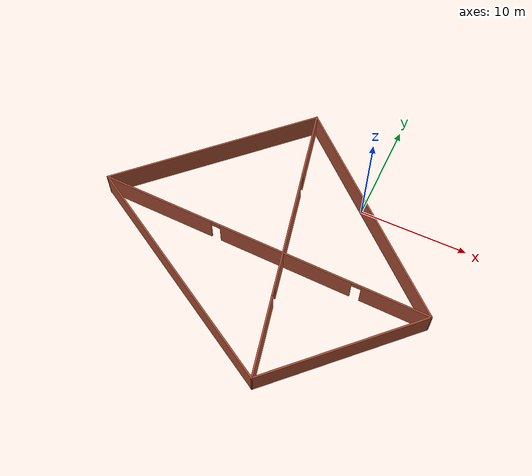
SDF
<?xml version='1.0'?>
<sdf version='1.6'>
  <model name='building'>
    <pose frame=''>-6.24613 -6.51715 0 0 -0 0</pose>
    <link name='Wall_1'>
      <collision name='Wall_1_Collision'>
        <geometry>
          <box>
            <size>20.5 0.15 2.5</size>
          </box>
        </geometry>
        <pose frame=''>0 0 1.25 0 -0 0</pose>
      </collision>
      <visual name='Wall_1_Visual'>
        <pose frame=''>0 0 1.25 0 -0 0</pose>
        <geometry>
          <box>
            <size>20.5 0.15 2.5</size>
          </box>
        </geometry>
        <material>
          <script>
            <uri>file://media/materials/scripts/gazebo.material</uri>
            <name>Gazebo/Bricks</name>
          </script>
          <ambient>1 1 1 1</ambient>
        </material>
        <meta>
          <layer>0</layer>
        </meta>
      </visual>
      <pose frame=''>-8.43147 5.8375 0 0 0 -2.35619</pose>
    </link>
    <link name='Wall_2'>
      <collision name='Wall_2_Collision'>
        <geometry>
          <box>
            <size>23.5 0.15 2.5</size>
          </box>
        </geometry>
        <pose frame=''>0 0 1.25 0 -0 0</pose>
      </collision>
      <visual name='Wall_2_Visual'>
        <pose frame=''>0 0 1.25 0 -0 0</pose>
        <geometry>
          <box>
            <size>23.5 0.15 2.5</size>
          </box>
        </geometry>
        <material>
          <script>
            <uri>file://media/materials/scripts/gazebo.material</uri>
            <name>Gazebo/Bricks</name>
          </script>
          <ambient>1 1 1 1</ambient>
        </material>
        <meta>
          <layer>0</layer>
        </meta>
      </visual>
      <pose frame=''>-5.51543 -7.19481 0 0 0 -0.523599</pose>
    </link>
    <link name='Wall_3'>
      <collision name='Wall_3_Collision'>
        <geometry>
          <box>
            <size>15.75 0.15 2.5</size>
          </box>
        </geometry>
        <pose frame=''>0 0 1.25 0 -0 0</pose>
      </collision>
      <visual name='Wall_3_Visual'>
        <pose frame=''>0 0 1.25 0 -0 0</pose>
        <geometry>
          <box>
            <size>15.75 0.15 2.5</size>
          </box>
        </geometry>
        <material>
          <script>
            <uri>file://media/materials/scripts/gazebo.material</uri>
            <name>Gazebo/Bricks</name>
          </script>
          <ambient>1 1 1 1</ambient>
        </material>
        <meta>
          <layer>0</layer>
        </meta>
      </visual>
      <pose frame=''>10.1108 -7.51688 0 0 -0 0.785398</pose>
    </link>
    <link name='Wall_4'>
      <collision name='Wall_4_Collision'>
        <geometry>
          <box>
            <size>22.7414 0.15 2.5</size>
          </box>
        </geometry>
        <pose frame=''>0 0 1.25 0 -0 0</pose>
      </collision>
      <visual name='Wall_4_Visual'>
        <pose frame=''>0 0 1.25 0 -0 0</pose>
        <geometry>
          <box>
            <size>22.7414 0.15 2.5</size>
          </box>
        </geometry>
        <material>
          <script>
            <uri>file://media/materials/scripts/gazebo.material</uri>
            <name>Gazebo/Bricks</name>
          </script>
          <ambient>1 1 1 1</ambient>
        </material>
        <meta>
          <layer>0</layer>
        </meta>
      </visual>
      <pose frame=''>7.19481 5.51543 0 0 -0 2.41348</pose>
    </link>
    <link name='Wall_5'>
      <pose frame=''>1.67938 0 0 0 0 -1.35067</pose>
      <visual name='Wall_5_Visual_0'>
        <pose frame=''>-10.0114 0 1.25 0 -0 0</pose>
        <geometry>
          <box>
            <size>6.83637 0.15 2.5</size>
          </box>
        </geometry>
        <material>
          <script>
            <uri>file://media/materials/scripts/gazebo.material</uri>
            <name>Gazebo/Bricks</name>
          </script>
          <ambient>1 1 1 1</ambient>
        </material>
        <meta>
          <layer>0</layer>
        </meta>
      </visual>
      <collision name='Wall_5_Collision_0'>
        <geometry>
          <box>
            <size>6.83637 0.15 2.5</size>
          </box>
        </geometry>
        <pose frame=''>-10.0114 0 1.25 0 -0 0</pose>
      </collision>
      <visual name='Wall_5_Visual_1'>
        <pose frame=''>-0.313618 0 1.25 0 -0 0</pose>
        <geometry>
          <box>
            <size>10.7591 0.15 2.5</size>
          </box>
        </geometry>
        <material>
          <script>
            <uri>file://media/materials/scripts/gazebo.material</uri>
            <name>Gazebo/Bricks</name>
          </script>
          <ambient>1 1 1 1</ambient>
        </material>
        <meta>
          <layer>0</layer>
        </meta>
      </visual>
      <collision name='Wall_5_Collision_1'>
        <geometry>
          <box>
            <size>10.7591 0.15 2.5</size>
          </box>
        </geometry>
        <pose frame=''>-0.313618 0 1.25 0 -0 0</pose>
      </collision>
      <visual name='Wall_5_Visual_2'>
        <pose frame=''>9.69776 0 1.25 0 -0 0</pose>
        <geometry>
          <box>
            <size>7.46361 0.15 2.5</size>
          </box>
        </geometry>
        <material>
          <script>
            <uri>file://media/materials/scripts/gazebo.material</uri>
            <name>Gazebo/Bricks</name>
          </script>
          <ambient>1 1 1 1</ambient>
        </material>
        <meta>
          <layer>0</layer>
        </meta>
      </visual>
      <collision name='Wall_5_Collision_2'>
        <geometry>
          <box>
            <size>7.46361 0.15 2.5</size>
          </box>
        </geometry>
        <pose frame=''>9.69776 0 1.25 0 -0 0</pose>
      </collision>
      <visual name='Wall_5_Visual_3'>
        <pose frame=''>-6.14319 0 2.25 0 -0 0</pose>
        <geometry>
          <box>
            <size>0.9 0.15 0.5</size>
          </box>
        </geometry>
        <material>
          <script>
            <uri>file://media/materials/scripts/gazebo.material</uri>
            <name>Gazebo/Bricks</name>
          </script>
          <ambient>1 1 1 1</ambient>
        </material>
        <meta>
          <layer>0</layer>
        </meta>
      </visual>
      <collision name='Wall_5_Collision_3'>
        <geometry>
          <box>
            <size>0.9 0.15 0.5</size>
          </box>
        </geometry>
        <pose frame=''>-6.14319 0 2.25 0 -0 0</pose>
      </collision>
      <visual name='Wall_5_Visual_4'>
        <pose frame=''>5.51595 0 2.25 0 -0 0</pose>
        <geometry>
          <box>
            <size>0.9 0.15 0.5</size>
          </box>
        </geometry>
        <material>
          <script>
            <uri>file://media/materials/scripts/gazebo.material</uri>
            <name>Gazebo/Bricks</name>
          </script>
          <ambient>1 1 1 1</ambient>
        </material>
        <meta>
          <layer>0</layer>
        </meta>
      </visual>
      <collision name='Wall_5_Collision_4'>
        <geometry>
          <box>
            <size>0.9 0.15 0.5</size>
          </box>
        </geometry>
        <pose frame=''>5.51595 0 2.25 0 -0 0</pose>
      </collision>
    </link>
    <link name='Wall_7'>
      <pose frame=''>1e-06 -1.67938 0 0 0 -0.020608</pose>
      <visual name='Wall_7_Visual_0'>
        <pose frame=''>-10.3358 0 1.25 0 -0 0</pose>
        <geometry>
          <box>
            <size>10.7375 0.15 2.5</size>
          </box>
        </geometry>
        <material>
          <script>
            <uri>file://media/materials/scripts/gazebo.material</uri>
            <name>Gazebo/Bricks</name>
          </script>
          <ambient>1 1 1 1</ambient>
        </material>
        <meta>
          <layer>0</layer>
        </meta>
      </visual>
      <collision name='Wall_7_Collision_0'>
        <geometry>
          <box>
            <size>10.7375 0.15 2.5</size>
          </box>
        </geometry>
        <pose frame=''>-10.3358 0 1.25 0 -0 0</pose>
      </collision>
      <visual name='Wall_7_Visual_1'>
        <pose frame=''>2.20987 0 1.25 0 -0 0</pose>
        <geometry>
          <box>
            <size>12.5539 0.15 2.5</size>
          </box>
        </geometry>
        <material>
          <script>
            <uri>file://media/materials/scripts/gazebo.material</uri>
            <name>Gazebo/Bricks</name>
          </script>
          <ambient>1 1 1 1</ambient>
        </material>
        <meta>
          <layer>0</layer>
        </meta>
      </visual>
      <collision name='Wall_7_Collision_1'>
        <geometry>
          <box>
            <size>12.5539 0.15 2.5</size>
          </box>
        </geometry>
        <pose frame=''>2.20987 0 1.25 0 -0 0</pose>
      </collision>
      <visual name='Wall_7_Visual_2'>
        <pose frame=''>12.5457 0 1.25 0 -0 0</pose>
        <geometry>
          <box>
            <size>6.31776 0.15 2.5</size>
          </box>
        </geometry>
        <material>
          <script>
            <uri>file://media/materials/scripts/gazebo.material</uri>
            <name>Gazebo/Bricks</name>
          </script>
          <ambient>1 1 1 1</ambient>
        </material>
        <meta>
          <layer>0</layer>
        </meta>
      </visual>
      <collision name='Wall_7_Collision_2'>
        <geometry>
          <box>
            <size>6.31776 0.15 2.5</size>
          </box>
        </geometry>
        <pose frame=''>12.5457 0 1.25 0 -0 0</pose>
      </collision>
      <visual name='Wall_7_Visual_3'>
        <pose frame=''>-4.51709 0 2.25 0 -0 0</pose>
        <geometry>
          <box>
            <size>0.9 0.15 0.5</size>
          </box>
        </geometry>
        <material>
          <script>
            <uri>file://media/materials/scripts/gazebo.material</uri>
            <name>Gazebo/Bricks</name>
          </script>
          <ambient>1 1 1 1</ambient>
        </material>
        <meta>
          <layer>0</layer>
        </meta>
      </visual>
      <collision name='Wall_7_Collision_3'>
        <geometry>
          <box>
            <size>0.9 0.15 0.5</size>
          </box>
        </geometry>
        <pose frame=''>-4.51709 0 2.25 0 -0 0</pose>
      </collision>
      <visual name='Wall_7_Visual_4'>
        <pose frame=''>8.93684 0 2.25 0 -0 0</pose>
        <geometry>
          <box>
            <size>0.9 0.15 0.5</size>
          </box>
        </geometry>
        <material>
          <script>
            <uri>file://media/materials/scripts/gazebo.material</uri>
            <name>Gazebo/Bricks</name>
          </script>
          <ambient>1 1 1 1</ambient>
        </material>
        <meta>
          <layer>0</layer>
        </meta>
      </visual>
      <collision name='Wall_7_Collision_4'>
        <geometry>
          <box>
            <size>0.9 0.15 0.5</size>
          </box>
        </geometry>
        <pose frame=''>8.93684 0 2.25 0 -0 0</pose>
      </collision>
    </link>
    <static>1</static>
  </model>
</sdf>
